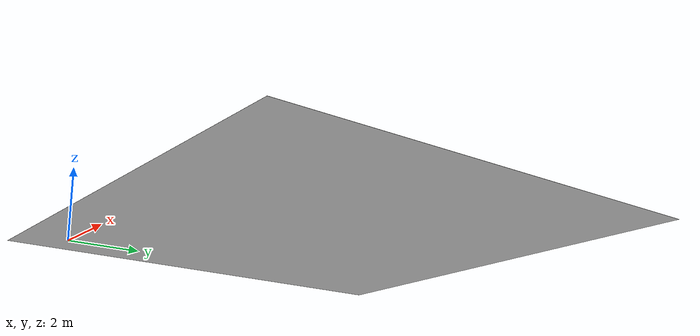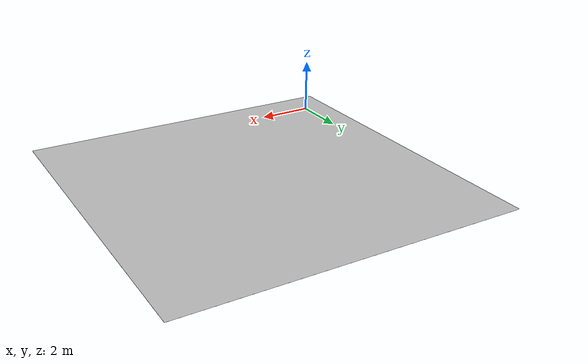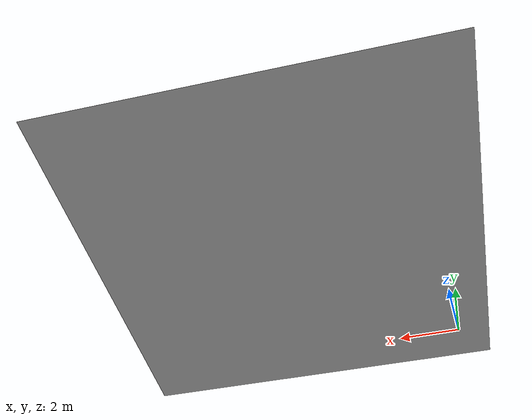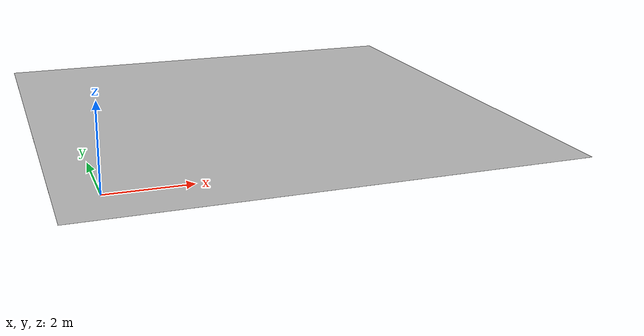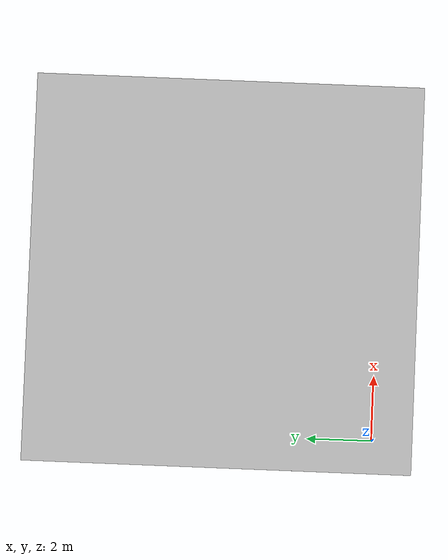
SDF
<?xml version="1.0"?>
<sdf version="1.5">
    <model name="boundary">
        <pose>5 4.75 0.0 0 0 0</pose>
        <static>True</static>
        <link name="boundary_link">
            <visual name="boundary_vis">
                <geometry>
                    <box>
                        <size>12 12 1e-3</size>
                    </box>
                </geometry>
                <material>
                    <script>
                        <uri>model://boundary/materials/scripts</uri>
                        <uri>model://boundary/materials/textures</uri>
                        <name>boundary</name>
                    </script>
                </material>
            </visual>
        </link>
    </model>
</sdf>
